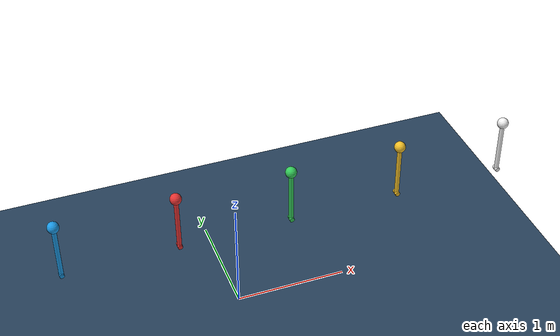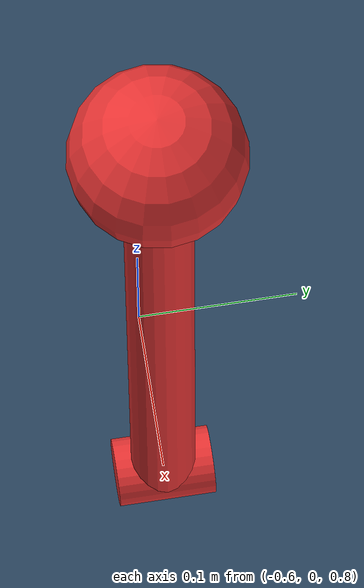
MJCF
<mujoco model="control_showcase">
  <asset>
    <texture name="grid" type="2d" builtin="checker" rgb1=".1 .2 .3" rgb2=".2 .3 .4" width="300" height="300" mark="edge" markrgb=".2 .3 .4"/>
    <material name="grid" texture="grid" texrepeat="1 1" texuniform="true" reflectance=".2"/>
    <material name="fallback" rgba="0.1 0.6 0.9 1"/>
    <material name="motor" rgba="0.9 0.2 0.2 1"/>
    <material name="velocity" rgba="0.2 0.8 0.35 1"/>
    <material name="position" rgba="0.95 0.75 0.15 1"/>
    <material name="independent" rgba="0.95 0.95 0.95 1"/>
  </asset>

  <option timestep="0.01">
    <flag contact="disable" energy="enable"/>
  </option>

  <worldbody>
    <light name="light" pos="0 0 3"/>
    <geom name="floor" size="3 2 .2" type="plane" material="grid"/>
    <camera name="fixed" pos="0.5 -5 4.2" xyaxes="1 0 0 0 0.65 0.76"/>
    <camera name="lookat" mode="targetbodycom" target="velocity_pole" pos="0.5 -5 1.6"/>

    <body name="fallback_pole" pos="-1.5 0 .8">
      <joint name="fallback_hinge" type="hinge" axis="0 1 0" damping="0.1" limited="true" range="-90 90"/>
      <geom name="fallback_base" type="cylinder" fromto="0 -.03 0 0 .03 0" size="0.021" mass="0" material="fallback"/>
      <geom name="fallback_rod" type="capsule" fromto="0 0 0 0 0 0.5" size="0.02" mass="0" material="fallback"/>
      <geom name="fallback_mass" type="sphere" pos="0 0 0.5" size="0.05" mass="1" material="fallback"/>
    </body>

    <body name="motor_pole" pos="-0.5 0 .8">
      <joint name="motor_hinge" type="hinge" axis="0 1 0" damping="0.1" limited="true" range="-90 90"/>
      <geom name="motor_base" type="cylinder" fromto="0 -.03 0 0 .03 0" size="0.021" mass="0" material="motor"/>
      <geom name="motor_rod" type="capsule" fromto="0 0 0 0 0 0.5" size="0.02" mass="0" material="motor"/>
      <geom name="motor_mass" type="sphere" pos="0 0 0.5" size="0.05" mass="1" material="motor"/>
    </body>

    <body name="velocity_pole" pos="0.5 0 .8">
      <joint name="velocity_hinge" type="hinge" axis="0 1 0" damping="0.1" limited="true" range="-90 90"/>
      <geom name="velocity_base" type="cylinder" fromto="0 -.03 0 0 .03 0" size="0.021" mass="0" material="velocity"/>
      <geom name="velocity_rod" type="capsule" fromto="0 0 0 0 0 0.5" size="0.02" mass="0" material="velocity"/>
      <geom name="velocity_mass" type="sphere" pos="0 0 0.5" size="0.05" mass="1" material="velocity"/>
    </body>

    <body name="position_pole" pos="1.5 0 .8">
      <joint name="position_hinge" type="hinge" axis="0 1 0" damping="0.1" limited="true" range="-90 90"/>
      <geom name="position_base" type="cylinder" fromto="0 -.03 0 0 .03 0" size="0.021" mass="0" material="position"/>
      <geom name="position_rod" type="capsule" fromto="0 0 0 0 0 0.5" size="0.02" mass="0" material="position"/>
      <geom name="position_mass" type="sphere" pos="0 0 0.5" size="0.05" mass="1" material="position"/>
    </body>

    <body name="non_ros_pole" pos="2.5 0 .8">
      <joint name="non_ros_hinge" type="hinge" axis="0 1 0" damping="0.1" limited="true" range="-90 90"/>
      <geom name="non_ros_base" type="cylinder" fromto="0 -.03 0 0 .03 0" size="0.021" mass="0" material="independent"/>
      <geom name="non_ros_rod" type="capsule" fromto="0 0 0 0 0 0.5" size="0.02" mass="0" material="independent"/>
      <geom name="non_ros_mass" type="sphere" pos="0 0 0.5" size="0.05" mass="1" material="independent"/>
    </body>
  </worldbody>

  <actuator>
    <motor name="motor_hinge_act_eff" joint="motor_hinge" gear="1" ctrlrange="-5 5" ctrllimited="true"/>
    <velocity name="velocity_hinge_act_vel" joint="velocity_hinge" kv="4" ctrlrange="-3 3" ctrllimited="true"/>
    <position name="position_hinge_act_pos" joint="position_hinge" kp="6" ctrlrange="-1.2 1.2" ctrllimited="true"/>
    <position name="independent_hinge_act" joint="non_ros_hinge" kp="6" ctrlrange="-1.2 1.2" ctrllimited="true"/>
  </actuator>
</mujoco>
